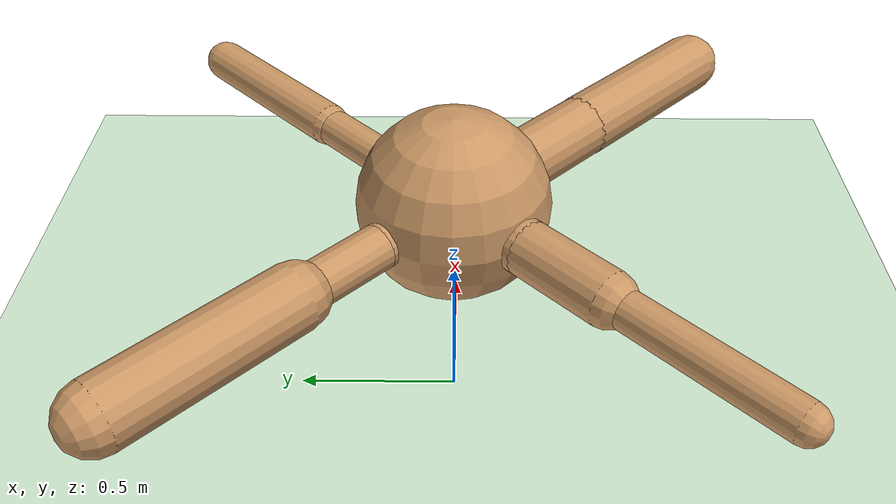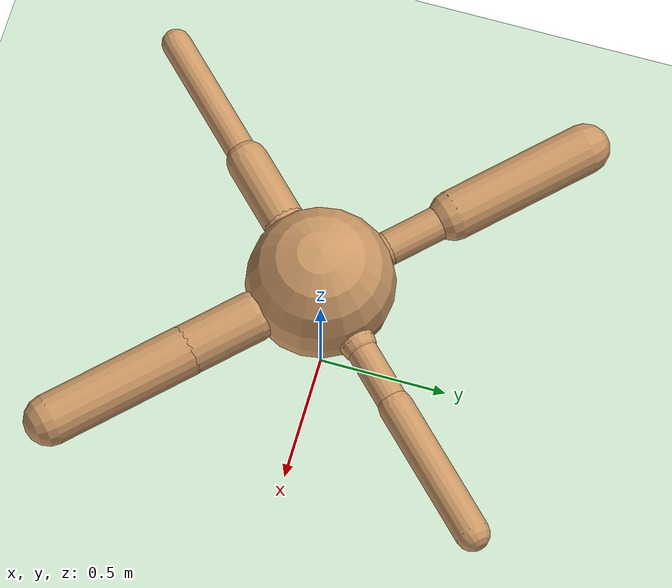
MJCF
<?xml version="1.0" encoding="utf-8"?>
<mujoco model="ant">
	<compiler angle="degree" coordinate="local" inertiafromgeom="true"></compiler>
	<option integrator="RK4" timestep="0.01"></option>
	<custom>
		<numeric data="0.0 0.0 0.55 1.0 0.0 0.0 0.0 0.0 1.0 0.0 -1.0 0.0 -1.0 0.0 1.0" name="init_qpos"></numeric>
	</custom>
	<default>
		<joint armature="1" damping="0.7779093484402805" limited="true"></joint>
		<geom conaffinity="0" condim="3" density="5.0" friction="0.9255267650084313 0.5626367972265346 0.4042752441795602" margin="0.01" rgba="0.8 0.6 0.4 1"></geom>
	</default>
	<asset>
		<texture builtin="gradient" height="100" rgb1="1 1 1" rgb2="0 0 0" type="skybox" width="100"></texture>
		<texture builtin="flat" height="1278" mark="cross" markrgb="1 1 1" name="texgeom" random="0.01" rgb1="0.8 0.6 0.4" rgb2="0.8 0.6 0.4" type="cube" width="127"></texture>
		<texture builtin="checker" height="100" name="texplane" rgb1="0 0 0" rgb2="0.8 0.8 0.8" type="2d" width="100"></texture>
		<material name="MatPlane" reflectance="0.5" shininess="1" specular="1" texrepeat="60 60" texture="texplane"></material>
		<material name="geom" texture="texgeom" texuniform="true"></material>
	</asset>
	<worldbody>
		<light cutoff="100" diffuse="1 1 1" dir="-0 0 -1.3" directional="true" exponent="1" pos="0 0 1.3" specular=".1 .1 .1"></light>
		<geom conaffinity="1" condim="3" material="MatPlane" name="floor" pos="0 0 0" rgba="0.8 0.9 0.8 1" size="33.48365946645802 48.618422438023046 44.634464017945845" type="plane"></geom>
		<body name="torso" pos="0 0 0.75">
			<camera name="track" mode="trackcom" pos="0 -3 0.3" xyaxes="1 0 0 0 0 1"></camera>
			<geom name="torso_geom" pos="0 0 0" size="0.28149977636061563" type="sphere"></geom>
			<joint armature="0" damping="0.0" limited="false" margin="0.01" name="root" pos="0 0 0" type="free"></joint>
			<body name="front_left_leg" pos="0 0 0">
				<geom fromto="0.0 0.0 0.0 0.2 0.2 0.0" name="aux_1_geom" size="0.06872429150522064" type="capsule"></geom>
				<body name="aux_1" pos="0.2 0.2 0">
					<joint axis="0 0 1" name="hip_1" pos="0.0 0.0 0.0" range="-30 30" type="hinge"></joint>
					<geom fromto="0.0 0.0 0.0 0.2 0.2 0.0" name="left_leg_geom" size="0.057514508823768566" type="capsule"></geom>
					<body pos="0.2 0.2 0">
						<joint axis="-1 1 0" name="ankle_1" pos="0.0 0.0 0.0" range="30 70" type="hinge"></joint>
						<geom fromto="0.0 0.0 0.0 0.4 0.4 0.0" name="left_ankle_geom" size="0.06547662404609504" type="capsule"></geom>
					</body>
				</body>
			</body>
			<body name="front_right_leg" pos="0 0 0">
				<geom fromto="0.0 0.0 0.0 -0.2 0.2 0.0" name="aux_2_geom" size="0.0656393677184951" type="capsule"></geom>
				<body name="aux_2" pos="-0.2 0.2 0">
					<joint axis="0 0 1" name="hip_2" pos="0.0 0.0 0.0" range="-30 30" type="hinge"></joint>
					<geom fromto="0.0 0.0 0.0 -0.2 0.2 0.0" name="right_leg_geom" size="0.0656522682599139" type="capsule"></geom>
					<body pos="-0.2 0.2 0">
						<joint axis="1 1 0" name="ankle_2" pos="0.0 0.0 0.0" range="-70 -30" type="hinge"></joint>
						<geom fromto="0.0 0.0 0.0 -0.4 0.4 0.0" name="right_ankle_geom" size="0.09638301027877308" type="capsule"></geom>
					</body>
				</body>
			</body>
			<body name="back_leg" pos="0 0 0">
				<geom fromto="0.0 0.0 0.0 -0.2 -0.2 0.0" name="aux_3_geom" size="0.0812824046674089" type="capsule"></geom>
				<body name="aux_3" pos="-0.2 -0.2 0">
					<joint axis="0 0 1" name="hip_3" pos="0.0 0.0 0.0" range="-30 30" type="hinge"></joint>
					<geom fromto="0.0 0.0 0.0 -0.2 -0.2 0.0" name="back_leg_geom" size="0.08057530204586477" type="capsule"></geom>
					<body pos="-0.2 -0.2 0">
						<joint axis="-1 1 0" name="ankle_3" pos="0.0 0.0 0.0" range="-70 -30" type="hinge"></joint>
						<geom fromto="0.0 0.0 0.0 -0.4 -0.4 0.0" name="third_ankle_geom" size="0.05657835722624513" type="capsule"></geom>
					</body>
				</body>
			</body>
			<body name="right_back_leg" pos="0 0 0">
				<geom fromto="0.0 0.0 0.0 0.2 -0.2 0.0" name="aux_4_geom" size="0.05786240329697512" type="capsule"></geom>
				<body name="aux_4" pos="0.2 -0.2 0">
					<joint axis="0 0 1" name="hip_4" pos="0.0 0.0 0.0" range="-30 30" type="hinge"></joint>
					<geom fromto="0.0 0.0 0.0 0.2 -0.2 0.0" name="rightback_leg_geom" size="0.09664151610277802" type="capsule"></geom>
					<body pos="0.2 -0.2 0">
						<joint axis="1 1 0" name="ankle_4" pos="0.0 0.0 0.0" range="30 70" type="hinge"></joint>
						<geom fromto="0.0 0.0 0.0 0.4 -0.4 0.0" name="fourth_ankle_geom" size="0.09786736244570986" type="capsule"></geom>
					</body>
				</body>
			</body>
		</body>
	</worldbody>
	<actuator>
		<motor ctrllimited="true" ctrlrange="-1.0 1.0" joint="hip_4" gear="150"></motor>
		<motor ctrllimited="true" ctrlrange="-1.0 1.0" joint="ankle_4" gear="150"></motor>
		<motor ctrllimited="true" ctrlrange="-1.0 1.0" joint="hip_1" gear="150"></motor>
		<motor ctrllimited="true" ctrlrange="-1.0 1.0" joint="ankle_1" gear="150"></motor>
		<motor ctrllimited="true" ctrlrange="-1.0 1.0" joint="hip_2" gear="150"></motor>
		<motor ctrllimited="true" ctrlrange="-1.0 1.0" joint="ankle_2" gear="150"></motor>
		<motor ctrllimited="true" ctrlrange="-1.0 1.0" joint="hip_3" gear="150"></motor>
		<motor ctrllimited="true" ctrlrange="-1.0 1.0" joint="ankle_3" gear="150"></motor>
	</actuator>
</mujoco>
